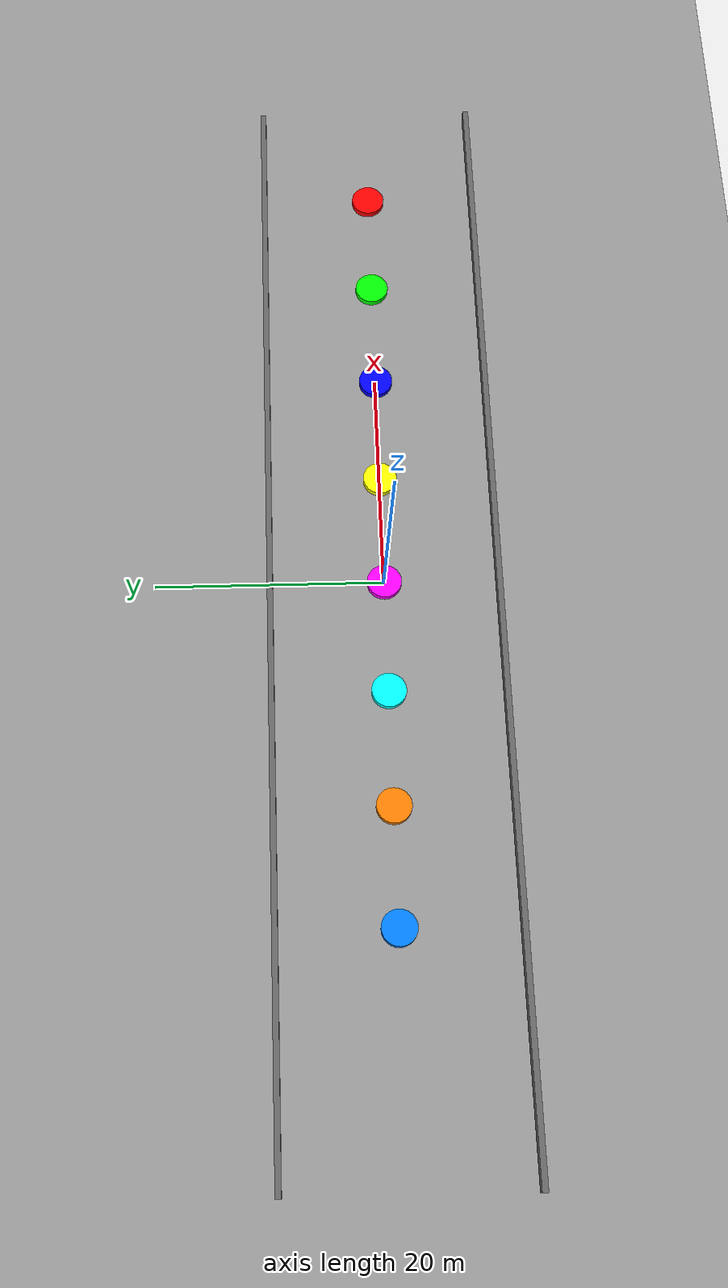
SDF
<sdf version="1.9">
 <world name="default">
  <physics type="ode">
   <max_step_size>0.01</max_step_size>
   <real_time_update_rate>60</real_time_update_rate>
  </physics>
  <model name="ground_plane">
   <static>true</static>
   <link name="link">
    <collision name="collision">
     <geometry><plane><normal>0 0 1</normal><size>100 100</size></plane></geometry>
     <surface><contact><collide_without_contact_bitmask>0x01</collide_without_contact_bitmask></contact></surface>
    </collision>
    <visual name="visual">
     <geometry><plane><normal>0 0 1</normal><size>100 100</size></plane></geometry>
     <material><ambient>0.6 0.6 0.6 1</ambient><diffuse>0.6 0.6 0.6 1</diffuse></material>
    </visual>
   </link>
  </model>
  <model name="wall_top">
   <pose>0 10 0 0 0 0</pose>
   <static>true</static>
   <link name="l">
    <visual name="v">
     <geometry><box><size>100 0.5 2</size></box></geometry>
     <material><ambient>0.4 0.4 0.4 1</ambient></material>
    </visual>
   </link>
  </model>
  <model name="wall_bottom">
   <pose>0 -10 0 0 0 0</pose>
   <static>true</static>
   <link name="l">
    <visual name="v">
     <geometry><box><size>100 0.5 2</size></box></geometry>
     <material><ambient>0.4 0.4 0.4 1</ambient></material>
    </visual>
   </link>
  </model>
  <model name="s1">
   <pose>40 0 0 0 0 0</pose>
   <link name="l">
    <gravity>false</gravity>
    <visual name="v">
     <geometry><cylinder><radius>1.5</radius><length>1</length></cylinder></geometry>
     <material><ambient>1 0 0 1</ambient></material>
    </visual>
   </link>
   <motion>
    <link_name>l</link_name>
    <direction>0 1 0</direction>
    <amplitude>6</amplitude>
    <speed>10</speed>
    <turnaround_threshold>0.5</turnaround_threshold>
   </motion>
  </model>
  <model name="s2">
   <pose>30 0 0 0 0 0</pose>
   <link name="l">
    <gravity>false</gravity>
    <visual name="v">
     <geometry><cylinder><radius>1.5</radius><length>1</length></cylinder></geometry>
     <material><ambient>0 1 0 1</ambient></material>
    </visual>
   </link>
   <motion>
    <link_name>l</link_name>
    <direction>0 -1 0</direction>
    <amplitude>6</amplitude>
    <speed>12</speed>
    <turnaround_threshold>0.5</turnaround_threshold>
   </motion>
  </model>
  <model name="s3">
   <pose>20 0 0 0 0 0</pose>
   <link name="l">
    <gravity>false</gravity>
    <visual name="v">
     <geometry><cylinder><radius>1.5</radius><length>1</length></cylinder></geometry>
     <material><ambient>0 0 1 1</ambient></material>
    </visual>
   </link>
   <motion>
    <link_name>l</link_name>
    <direction>0 1 0</direction>
    <amplitude>6</amplitude>
    <speed>14</speed>
    <turnaround_threshold>0.5</turnaround_threshold>
   </motion>
  </model>
  <model name="s4">
   <pose>10 0 0 0 0 0</pose>
   <link name="l">
    <gravity>false</gravity>
    <visual name="v">
     <geometry><cylinder><radius>1.5</radius><length>1</length></cylinder></geometry>
     <material><ambient>1 1 0 1</ambient></material>
    </visual>
   </link>
   <motion>
    <link_name>l</link_name>
    <direction>0 -1 0</direction>
    <amplitude>6</amplitude>
    <speed>10</speed>
    <turnaround_threshold>0.5</turnaround_threshold>
   </motion>
  </model>
  <model name="s5">
   <link name="l">
    <gravity>false</gravity>
    <visual name="v">
     <geometry><cylinder><radius>1.5</radius><length>1</length></cylinder></geometry>
     <material><ambient>1 0 1 1</ambient></material>
    </visual>
   </link>
   <motion>
    <link_name>l</link_name>
    <direction>0 1 0</direction>
    <amplitude>6</amplitude>
    <speed>12</speed>
    <turnaround_threshold>0.5</turnaround_threshold>
   </motion>
  </model>
  <model name="s6">
   <pose>-10 0 0 0 0 0</pose>
   <link name="l">
    <gravity>false</gravity>
    <visual name="v">
     <geometry><cylinder><radius>1.5</radius><length>1</length></cylinder></geometry>
     <material><ambient>0 1 1 1</ambient></material>
    </visual>
   </link>
   <motion>
    <link_name>l</link_name>
    <direction>0 -1 0</direction>
    <amplitude>6</amplitude>
    <speed>16</speed>
    <turnaround_threshold>0.5</turnaround_threshold>
   </motion>
  </model>
  <model name="s7">
   <pose>-20 0 0 0 0 0</pose>
   <link name="l">
    <gravity>false</gravity>
    <visual name="v">
     <geometry><cylinder><radius>1.5</radius><length>1</length></cylinder></geometry>
     <material><ambient>1 0.5 0 1</ambient></material>
    </visual>
   </link>
   <motion>
    <link_name>l</link_name>
    <direction>0 1 0</direction>
    <amplitude>6</amplitude>
    <speed>14</speed>
    <turnaround_threshold>0.5</turnaround_threshold>
   </motion>
  </model>
  <model name="s8">
   <pose>-30 0 0 0 0 0</pose>
   <link name="l">
    <gravity>false</gravity>
    <visual name="v">
     <geometry><cylinder><radius>1.5</radius><length>1</length></cylinder></geometry>
     <material><ambient>0 0.5 1 1</ambient></material>
    </visual>
   </link>
   <motion>
    <link_name>l</link_name>
    <direction>0 -1 0</direction>
    <amplitude>6</amplitude>
    <speed>10</speed>
    <turnaround_threshold>0.5</turnaround_threshold>
   </motion>
  </model>
 </world>
</sdf>
